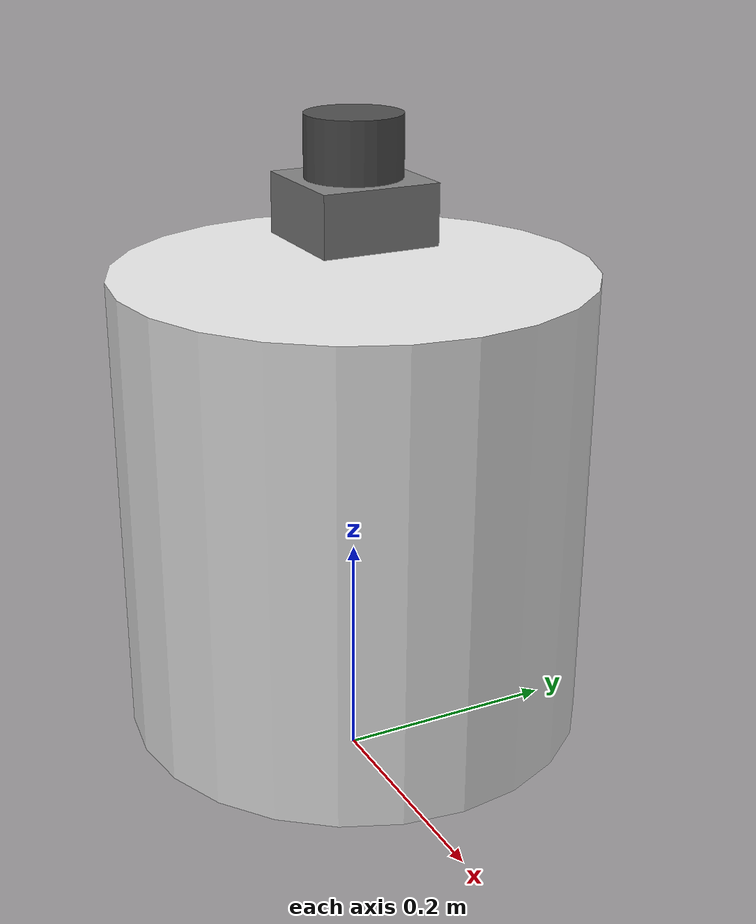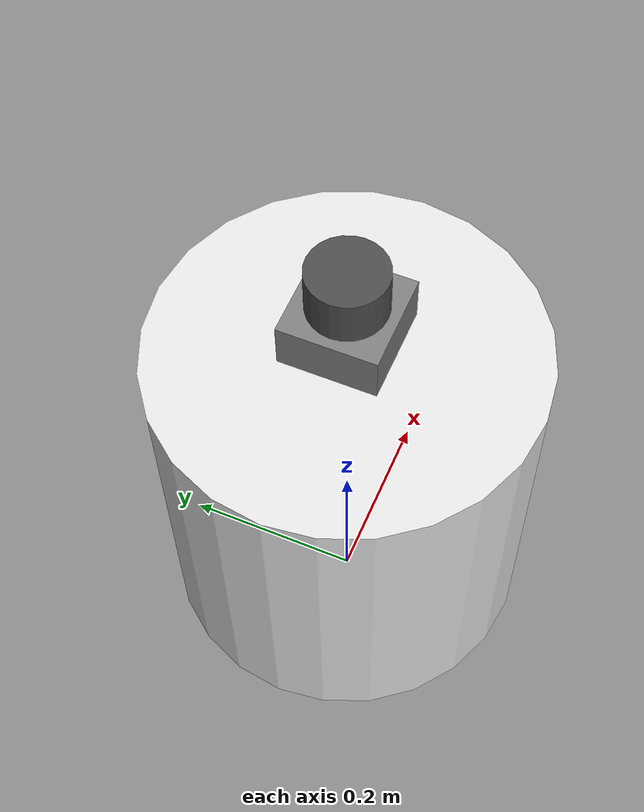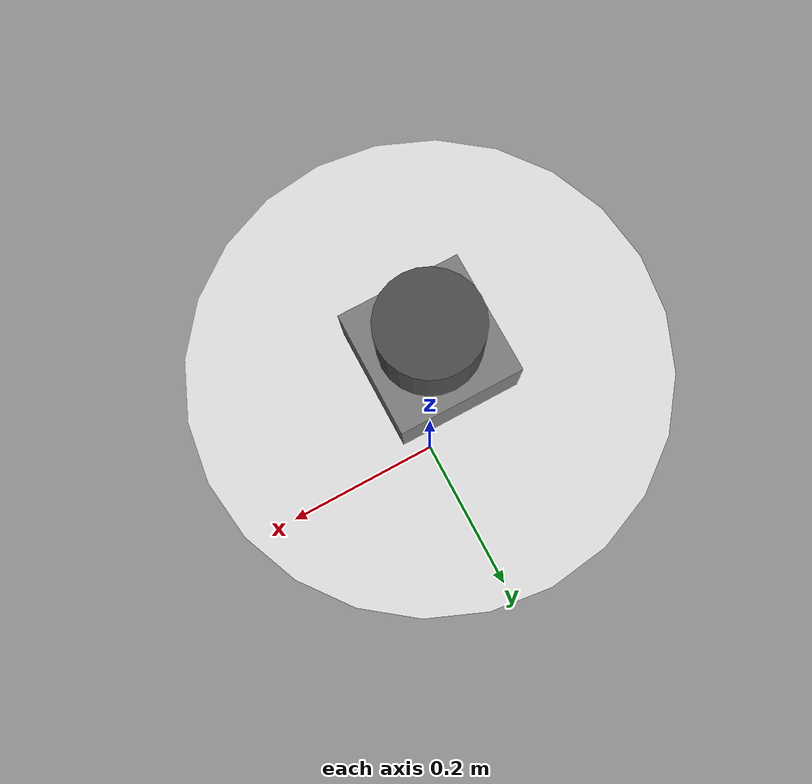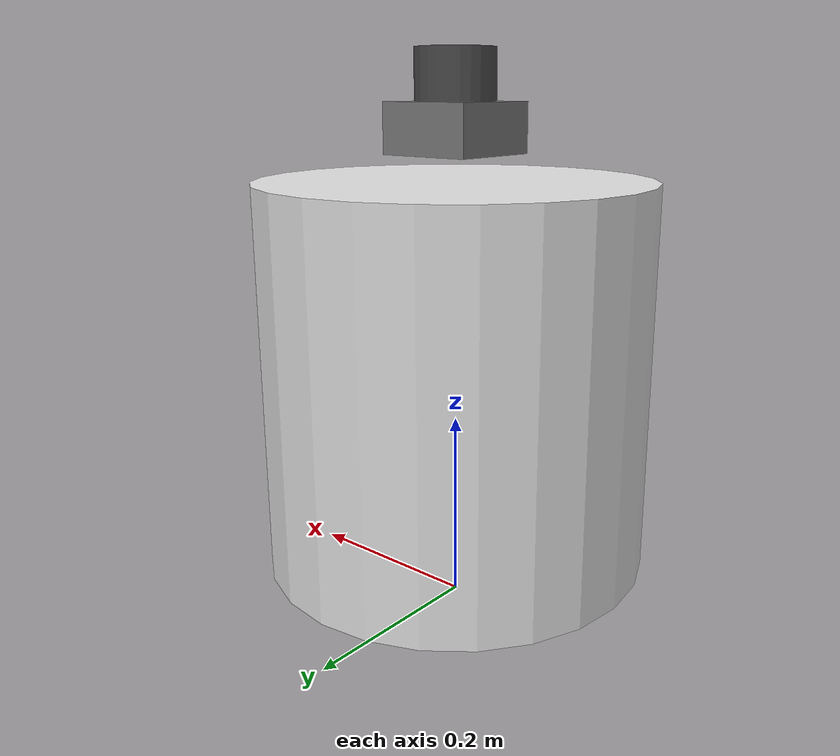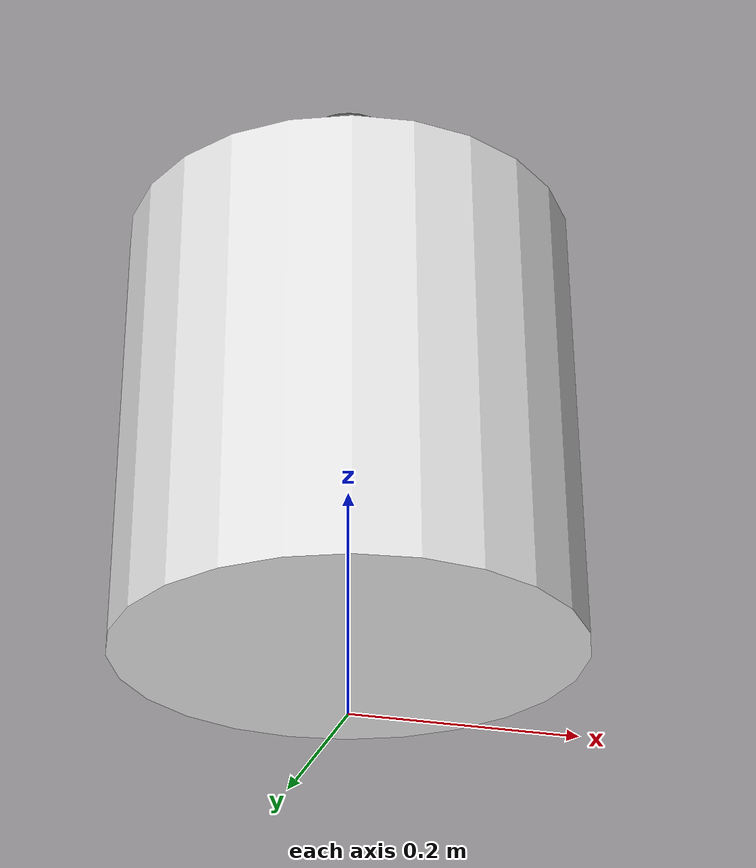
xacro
<?xml version="1.0"?>
<robot xmlns:xacro="http://www.ros.org/wiki/xacro" name="wpr_nav">

  <!--
    WPR (启智) 机器人导航配置
    在 wpr_simulation2 基础上添加 Mid360 LiDAR

    依赖: wpr_simulation2 包
    官方仓库: https://github.com/6-robot/wpr_simulation2
  -->

  <xacro:include filename="$(find pnc_nav_simulation)/urdf/sensors/livox_mid360.urdf.xacro"/>
  <xacro:include filename="$(find pnc_nav_simulation)/urdf/sensors/imu.urdf.xacro"/>

  <!-- 临时占位：简化的 WPR 模型（圆柱体底盘） -->
  <link name="base_footprint"/>

  <link name="base_link">
    <visual>
      <geometry>
        <cylinder radius="0.2" length="0.4"/>
      </geometry>
      <material name="white">
        <color rgba="0.9 0.9 0.9 1.0"/>
      </material>
    </visual>
    <collision>
      <geometry>
        <cylinder radius="0.2" length="0.4"/>
      </geometry>
    </collision>
    <inertial>
      <mass value="20.0"/>
      <inertia ixx="0.5" ixy="0" ixz="0" iyy="0.5" iyz="0" izz="0.4"/>
    </inertial>
  </link>

  <joint name="base_footprint_joint" type="fixed">
    <parent link="base_footprint"/>
    <child link="base_link"/>
    <origin xyz="0 0 0.25" rpy="0 0 0"/>
  </joint>

  <!-- 头部（传感器安装平台） -->
  <link name="sensor_mount">
    <visual>
      <geometry>
        <box size="0.1 0.1 0.05"/>
      </geometry>
      <material name="grey">
        <color rgba="0.5 0.5 0.5 1.0"/>
      </material>
    </visual>
    <inertial>
      <mass value="0.5"/>
      <inertia ixx="0.001" ixy="0" ixz="0" iyy="0.001" iyz="0" izz="0.001"/>
    </inertial>
  </link>

  <joint name="sensor_mount_joint" type="fixed">
    <parent link="base_link"/>
    <child link="sensor_mount"/>
    <origin xyz="0 0 0.25" rpy="0 0 0"/>
  </joint>

  <!-- 差速驱动 (WPR 是差速轮式机器人) -->
  <gazebo>
    <plugin name="diff_drive_controller" filename="libgazebo_ros_diff_drive.so">
      <ros>
        <remapping>cmd_vel:=cmd_vel</remapping>
        <remapping>odom:=odom</remapping>
      </ros>
      <left_joint>left_wheel_joint</left_joint>
      <right_joint>right_wheel_joint</right_joint>
      <wheel_separation>0.36</wheel_separation>
      <wheel_diameter>0.12</wheel_diameter>
      <max_wheel_torque>20.0</max_wheel_torque>
      <max_wheel_acceleration>2.0</max_wheel_acceleration>
      <publish_odom>true</publish_odom>
      <publish_odom_tf>true</publish_odom_tf>
      <odometry_frame>odom</odometry_frame>
      <robot_base_frame>base_footprint</robot_base_frame>
      <update_rate>50.0</update_rate>
    </plugin>
  </gazebo>

  <!-- 传感器：Livox Mid360 (安装在顶部) -->
  <xacro:livox_mid360
    parent_link="sensor_mount"
    xyz="0 0 0.05"
    rpy="0 0 0"
    topic="/livox/pointcloud"
    frame="livox_frame"/>

  <!-- 传感器：IMU -->
  <xacro:imu_sensor
    parent_link="base_link"
    xyz="0 0 0"
    rpy="0 0 0"
    topic="/imu"
    frame="imu_link"
    update_rate="200"/>

</robot>

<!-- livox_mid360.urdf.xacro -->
<robot xmlns:xacro="http://www.ros.org/wiki/xacro" name="livox_mid360">

  <!--
    Livox Mid360 LiDAR 传感器 Xacro 宏
    非重复扫描模式，360° FOV，40m量程
    使用 livox_laser_simulation_ros2 插件仿真
  -->

  <xacro:macro name="livox_mid360" params="parent_link:=base_link xyz:='0 0 0.2' rpy:='0 0 0' topic:=/livox/pointcloud frame:=livox_frame">

    <!-- Mid360 Link -->
    <link name="${frame}">
      <visual>
        <geometry>
          <cylinder radius="0.04" length="0.05"/>
        </geometry>
        <material name="dark_grey">
          <color rgba="0.3 0.3 0.3 1.0"/>
        </material>
      </visual>
      <collision>
        <geometry>
          <cylinder radius="0.04" length="0.05"/>
        </geometry>
      </collision>
      <inertial>
        <mass value="0.265"/>
        <inertia ixx="0.0001" ixy="0" ixz="0" iyy="0.0001" iyz="0" izz="0.0001"/>
      </inertial>
    </link>

    <!-- Joint to parent -->
    <joint name="${frame}_joint" type="fixed">
      <parent link="${parent_link}"/>
      <child link="${frame}"/>
      <origin xyz="${xyz}" rpy="${rpy}"/>
    </joint>

    <!-- Gazebo Livox Plugin -->
    <!--
      使用 livox_laser_simulation_ros2 插件
      如果该插件不可用，回退到标准 ray sensor
    -->
    <gazebo reference="${frame}">
      <sensor type="ray" name="livox_mid360">
        <pose>0 0 0 0 0 0</pose>
        <visualize>false</visualize>
        <update_rate>10</update_rate>
        <ray>
          <scan>
            <horizontal>
              <samples>360</samples>
              <resolution>1</resolution>
              <min_angle>-3.14159</min_angle>
              <max_angle>3.14159</max_angle>
            </horizontal>
            <vertical>
              <samples>32</samples>
              <resolution>1</resolution>
              <min_angle>-0.1222</min_angle>
              <max_angle>0.9076</max_angle>
            </vertical>
          </scan>
          <range>
            <min>0.1</min>
            <max>40.0</max>
            <resolution>0.01</resolution>
          </range>
          <noise>
            <type>gaussian</type>
            <mean>0.0</mean>
            <stddev>0.01</stddev>
          </noise>
        </ray>
        <plugin name="gazebo_ros_livox" filename="libgazebo_ros_ray_sensor.so">
          <ros>
            <remapping>~/out:=${topic}</remapping>
          </ros>
          <output_type>sensor_msgs/PointCloud2</output_type>
          <frame_name>${frame}</frame_name>
          <min_intensity>0</min_intensity>
        </plugin>
      </sensor>
    </gazebo>

  </xacro:macro>

</robot>

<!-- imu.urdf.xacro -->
<robot xmlns:xacro="http://www.ros.org/wiki/xacro" name="imu_sensor">

  <!--
    IMU 传感器 Xacro 宏
    6轴 IMU (加速度计 + 陀螺仪)
  -->

  <xacro:macro name="imu_sensor" params="parent_link:=base_link xyz:='0 0 0.1' rpy:='0 0 0' topic:=/imu frame:=imu_link update_rate:=200">

    <!-- IMU Link -->
    <link name="${frame}">
      <visual>
        <geometry>
          <box size="0.02 0.02 0.01"/>
        </geometry>
        <material name="blue">
          <color rgba="0.0 0.0 0.8 1.0"/>
        </material>
      </visual>
      <inertial>
        <mass value="0.01"/>
        <inertia ixx="0.00001" ixy="0" ixz="0" iyy="0.00001" iyz="0" izz="0.00001"/>
      </inertial>
    </link>

    <!-- Joint to parent -->
    <joint name="${frame}_joint" type="fixed">
      <parent link="${parent_link}"/>
      <child link="${frame}"/>
      <origin xyz="${xyz}" rpy="${rpy}"/>
    </joint>

    <!-- Gazebo IMU Plugin -->
    <gazebo reference="${frame}">
      <sensor type="imu" name="imu_sensor">
        <always_on>true</always_on>
        <update_rate>${update_rate}</update_rate>
        <imu>
          <angular_velocity>
            <x><noise type="gaussian"><mean>0.0</mean><stddev>0.0002</stddev></noise></x>
            <y><noise type="gaussian"><mean>0.0</mean><stddev>0.0002</stddev></noise></y>
            <z><noise type="gaussian"><mean>0.0</mean><stddev>0.0002</stddev></noise></z>
          </angular_velocity>
          <linear_acceleration>
            <x><noise type="gaussian"><mean>0.0</mean><stddev>0.017</stddev></noise></x>
            <y><noise type="gaussian"><mean>0.0</mean><stddev>0.017</stddev></noise></y>
            <z><noise type="gaussian"><mean>0.0</mean><stddev>0.017</stddev></noise></z>
          </linear_acceleration>
        </imu>
        <plugin name="gazebo_ros_imu" filename="libgazebo_ros_imu_sensor.so">
          <ros>
            <remapping>~/out:=${topic}</remapping>
          </ros>
          <frame_name>${frame}</frame_name>
          <initial_orientation_as_reference>false</initial_orientation_as_reference>
        </plugin>
      </sensor>
    </gazebo>

  </xacro:macro>

</robot>
